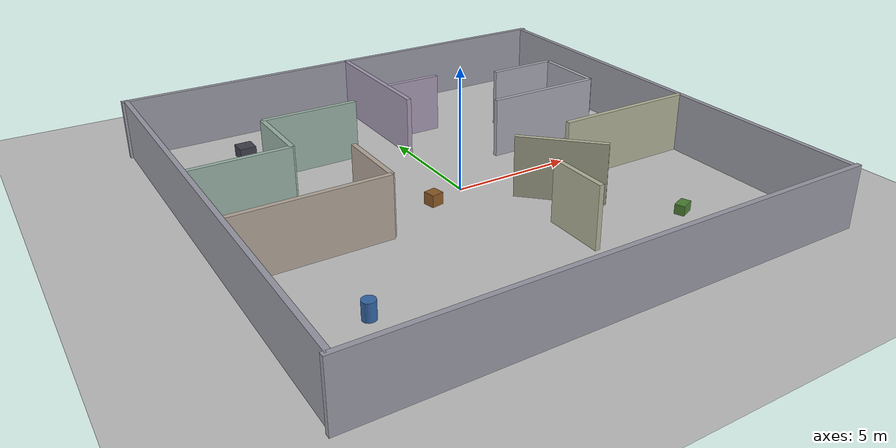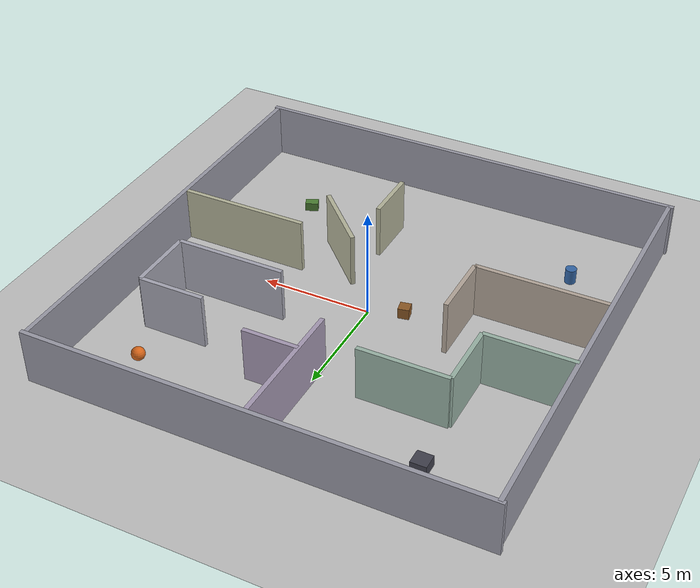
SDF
<?xml version="1.0" ?>
<sdf version="1.9">
  <world name="indoor_world">
    <physics name="1ms" type="ignored">
      <max_step_size>0.001</max_step_size>
      <real_time_factor>1.0</real_time_factor>
      <real_time_update_rate>1000</real_time_update_rate>
    </physics>

    <plugin name="gz::sim::systems::Physics" filename="ignition-gazebo-physics-system"/>
    <plugin name="gz::sim::systems::UserCommands" filename="ignition-gazebo-user-commands-system"/>
    <plugin name="gz::sim::systems::SceneBroadcaster" filename="ignition-gazebo-scene-broadcaster-system"/>
    <plugin name="gz::sim::systems::Contact" filename="ignition-gazebo-contact-system"/>

    <gravity>0 0 -9.8</gravity>
    <magnetic_field>6e-06 2.3e-05 -4.2e-05</magnetic_field>
    <atmosphere type="adiabatic"/>

    <scene>
      <ambient>0.5 0.5 0.5 1</ambient>
      <background>0.8 0.8 0.8 1</background>
      <shadows>true</shadows>
    </scene>

    <light name="sun" type="directional">
      <pose>0 0 15 0 0 0</pose>
      <cast_shadows>true</cast_shadows>
      <intensity>1</intensity>
      <direction>-0.5 0.1 -0.9</direction>
      <diffuse>0.9 0.9 0.9 1</diffuse>
      <specular>0.2 0.2 0.2 1</specular>
      <attenuation>
        <range>1000</range>
        <linear>0.01</linear>
        <constant>0.9</constant>
        <quadratic>0.001</quadratic>
      </attenuation>
    </light>

    <!-- Ground Plane (20x20m room area on 100x100m plane) -->
    <model name="ground_plane">
      <static>true</static>
      <link name="link">
        <collision name="collision">
          <geometry>
            <plane>
              <normal>0 0 1</normal>
              <size>100 100</size>
            </plane>
          </geometry>
          <surface>
            <friction>
              <ode/>
            </friction>
          </surface>
        </collision>
        <visual name="visual">
          <geometry>
            <plane>
              <normal>0 0 1</normal>
              <size>100 100</size>
            </plane>
          </geometry>
          <material>
            <ambient>0.75 0.75 0.75 1</ambient>
            <diffuse>0.75 0.75 0.75 1</diffuse>
            <specular>0.2 0.2 0.2 1</specular>
          </material>
        </visual>
      </link>
    </model>

    <!-- Room Structure: 20x20m with 5 distinct compartments separated by walls with unique bends -->
    <model name="building_structure">
      <static>true</static>

      <!-- Outer Boundary Walls (20x20m) -->
      <link name="wall_outer_north">
        <pose>0 10 1.25 0 0 0</pose>
        <collision name="col"><geometry><box><size>20.4 0.2 2.5</size></box></geometry></collision>
        <visual name="vis">
          <geometry><box><size>20.4 0.2 2.5</size></box></geometry>
          <material>
            <ambient>0.6 0.6 0.65 1</ambient>
            <diffuse>0.6 0.6 0.65 1</diffuse>
          </material>
        </visual>
      </link>

      <link name="wall_outer_south">
        <pose>0 -10 1.25 0 0 0</pose>
        <collision name="col"><geometry><box><size>20.4 0.2 2.5</size></box></geometry></collision>
        <visual name="vis">
          <geometry><box><size>20.4 0.2 2.5</size></box></geometry>
          <material>
            <ambient>0.6 0.6 0.65 1</ambient>
            <diffuse>0.6 0.6 0.65 1</diffuse>
          </material>
        </visual>
      </link>

      <link name="wall_outer_west">
        <pose>-10 0 1.25 0 0 0</pose>
        <collision name="col"><geometry><box><size>0.2 20.0 2.5</size></box></geometry></collision>
        <visual name="vis">
          <geometry><box><size>0.2 20.0 2.5</size></box></geometry>
          <material>
            <ambient>0.6 0.6 0.65 1</ambient>
            <diffuse>0.6 0.6 0.65 1</diffuse>
          </material>
        </visual>
      </link>

      <link name="wall_outer_east">
        <pose>10 0 1.25 0 0 0</pose>
        <collision name="col"><geometry><box><size>0.2 20.0 2.5</size></box></geometry></collision>
        <visual name="vis">
          <geometry><box><size>0.2 20.0 2.5</size></box></geometry>
          <material>
            <ambient>0.6 0.6 0.65 1</ambient>
            <diffuse>0.6 0.6 0.65 1</diffuse>
          </material>
        </visual>
      </link>

      <!-- Partition 1: SW Compartment (L-Shape Bend Wall - 90 Degree Turn) -->
      <link name="wall_sw_l1">
        <pose>-7.0 -2.0 1.25 0 0 0</pose>
        <collision name="col"><geometry><box><size>6.0 0.2 2.5</size></box></geometry></collision>
        <visual name="vis"><geometry><box><size>6.0 0.2 2.5</size></box></geometry>
          <material><ambient>0.7 0.65 0.6 1</ambient><diffuse>0.7 0.65 0.6 1</diffuse></material>
        </visual>
      </link>
      <link name="wall_sw_l2">
        <pose>-4.0 -0.5 1.25 0 0 0</pose>
        <collision name="col"><geometry><box><size>0.2 3.0 2.5</size></box></geometry></collision>
        <visual name="vis"><geometry><box><size>0.2 3.0 2.5</size></box></geometry>
          <material><ambient>0.7 0.65 0.6 1</ambient><diffuse>0.7 0.65 0.6 1</diffuse></material>
        </visual>
      </link>

      <!-- Partition 2: NW Compartment (Z-Shape / Step-Bend Wall) -->
      <link name="wall_nw_z1">
        <pose>-8.0 2.0 1.25 0 0 0</pose>
        <collision name="col"><geometry><box><size>4.0 0.2 2.5</size></box></geometry></collision>
        <visual name="vis"><geometry><box><size>4.0 0.2 2.5</size></box></geometry>
          <material><ambient>0.6 0.7 0.65 1</ambient><diffuse>0.6 0.7 0.65 1</diffuse></material>
        </visual>
      </link>
      <link name="wall_nw_z2">
        <pose>-6.0 3.5 1.25 0 0 0</pose>
        <collision name="col"><geometry><box><size>0.2 3.0 2.5</size></box></geometry></collision>
        <visual name="vis"><geometry><box><size>0.2 3.0 2.5</size></box></geometry>
          <material><ambient>0.6 0.7 0.65 1</ambient><diffuse>0.6 0.7 0.65 1</diffuse></material>
        </visual>
      </link>
      <link name="wall_nw_z3">
        <pose>-4.0 5.0 1.25 0 0 0</pose>
        <collision name="col"><geometry><box><size>4.0 0.2 2.5</size></box></geometry></collision>
        <visual name="vis"><geometry><box><size>4.0 0.2 2.5</size></box></geometry>
          <material><ambient>0.6 0.7 0.65 1</ambient><diffuse>0.6 0.7 0.65 1</diffuse></material>
        </visual>
      </link>

      <!-- Partition 3: Divider between NW & NE (T-Junction Bend Wall) -->
      <link name="wall_ne_t1">
        <pose>0.0 7.0 1.25 0 0 0</pose>
        <collision name="col"><geometry><box><size>0.2 6.0 2.5</size></box></geometry></collision>
        <visual name="vis"><geometry><box><size>0.2 6.0 2.5</size></box></geometry>
          <material><ambient>0.65 0.6 0.7 1</ambient><diffuse>0.65 0.6 0.7 1</diffuse></material>
        </visual>
      </link>
      <link name="wall_ne_t2">
        <pose>1.25 6.0 1.25 0 0 0</pose>
        <collision name="col"><geometry><box><size>2.5 0.2 2.5</size></box></geometry></collision>
        <visual name="vis"><geometry><box><size>2.5 0.2 2.5</size></box></geometry>
          <material><ambient>0.65 0.6 0.7 1</ambient><diffuse>0.65 0.6 0.7 1</diffuse></material>
        </visual>
      </link>

      <!-- Partition 4: NE Compartment Inner Partition (U-Hook Bend Wall) -->
      <link name="wall_ne_u1">
        <pose>5.5 2.0 1.25 0 0 0</pose>
        <collision name="col"><geometry><box><size>5.0 0.2 2.5</size></box></geometry></collision>
        <visual name="vis"><geometry><box><size>5.0 0.2 2.5</size></box></geometry>
          <material><ambient>0.65 0.65 0.7 1</ambient><diffuse>0.65 0.65 0.7 1</diffuse></material>
        </visual>
      </link>
      <link name="wall_ne_u2">
        <pose>8.0 3.5 1.25 0 0 0</pose>
        <collision name="col"><geometry><box><size>0.2 3.0 2.5</size></box></geometry></collision>
        <visual name="vis"><geometry><box><size>0.2 3.0 2.5</size></box></geometry>
          <material><ambient>0.65 0.65 0.7 1</ambient><diffuse>0.65 0.65 0.7 1</diffuse></material>
        </visual>
      </link>
      <link name="wall_ne_u3">
        <pose>6.5 5.0 1.25 0 0 0</pose>
        <collision name="col"><geometry><box><size>3.0 0.2 2.5</size></box></geometry></collision>
        <visual name="vis"><geometry><box><size>3.0 0.2 2.5</size></box></geometry>
          <material><ambient>0.65 0.65 0.7 1</ambient><diffuse>0.65 0.65 0.7 1</diffuse></material>
        </visual>
      </link>

      <!-- Partition 5: SE Compartment (45-degree Diagonal / Angled Wall Bend) -->
      <link name="wall_se_a1">
        <pose>7.0 -1.5 1.25 0 0 0</pose>
        <collision name="col"><geometry><box><size>6.0 0.2 2.5</size></box></geometry></collision>
        <visual name="vis"><geometry><box><size>6.0 0.2 2.5</size></box></geometry>
          <material><ambient>0.7 0.7 0.6 1</ambient><diffuse>0.7 0.7 0.6 1</diffuse></material>
        </visual>
      </link>
      <link name="wall_se_a2">
        <pose>2.75 -2.75 1.25 0 0 -0.785398</pose>
        <collision name="col"><geometry><box><size>3.535 0.2 2.5</size></box></geometry></collision>
        <visual name="vis"><geometry><box><size>3.535 0.2 2.5</size></box></geometry>
          <material><ambient>0.7 0.7 0.6 1</ambient><diffuse>0.7 0.7 0.6 1</diffuse></material>
        </visual>
      </link>
      <link name="wall_se_a3">
        <pose>1.5 -5.25 1.25 0 0 0</pose>
        <collision name="col"><geometry><box><size>0.2 2.5 2.5</size></box></geometry></collision>
        <visual name="vis"><geometry><box><size>0.2 2.5 2.5</size></box></geometry>
          <material><ambient>0.7 0.7 0.6 1</ambient><diffuse>0.7 0.7 0.6 1</diffuse></material>
        </visual>
      </link>
    </model>

    <!-- 5 Small Items / Props placed across the compartments -->

    <!-- Item 1: Small Wooden Crate (Central Atrium) -->
    <model name="prop_crate_center">
      <static>true</static>
      <pose>-1.5 -0.5 0.25 0 0 0.2</pose>
      <link name="link">
        <collision name="col">
          <geometry><box><size>0.5 0.5 0.5</size></box></geometry>
        </collision>
        <visual name="vis">
          <geometry><box><size>0.5 0.5 0.5</size></box></geometry>
          <material>
            <ambient>0.55 0.35 0.15 1</ambient>
            <diffuse>0.55 0.35 0.15 1</diffuse>
          </material>
        </visual>
      </link>
    </model>

    <!-- Item 2: Small Metal Barrel (SW Compartment) -->
    <model name="prop_barrel_sw">
      <static>true</static>
      <pose>-7.0 -6.0 0.35 0 0 0</pose>
      <link name="link">
        <collision name="col">
          <geometry><cylinder><radius>0.25</radius><length>0.7</length></cylinder></geometry>
        </collision>
        <visual name="vis">
          <geometry><cylinder><radius>0.25</radius><length>0.7</length></cylinder></geometry>
          <material>
            <ambient>0.2 0.4 0.65 1</ambient>
            <diffuse>0.2 0.4 0.65 1</diffuse>
          </material>
        </visual>
      </link>
    </model>

    <!-- Item 3: Workshop Workbench Table (NW Compartment) -->
    <model name="prop_table_nw">
      <static>true</static>
      <pose>-6.0 7.5 0.25 0 0 0</pose>
      <link name="link">
        <collision name="col">
          <geometry><box><size>0.7 0.7 0.5</size></box></geometry>
        </collision>
        <visual name="vis">
          <geometry><box><size>0.7 0.7 0.5</size></box></geometry>
          <material>
            <ambient>0.25 0.25 0.3 1</ambient>
            <diffuse>0.25 0.25 0.3 1</diffuse>
          </material>
        </visual>
      </link>
    </model>

    <!-- Item 4: Small Spherical Container (NE Compartment) -->
    <model name="prop_sphere_ne">
      <static>true</static>
      <pose>7.0 7.0 0.3 0 0 0</pose>
      <link name="link">
        <collision name="col">
          <geometry><sphere><radius>0.3</radius></sphere></geometry>
        </collision>
        <visual name="vis">
          <geometry><sphere><radius>0.3</radius></sphere></geometry>
          <material>
            <ambient>0.85 0.4 0.1 1</ambient>
            <diffuse>0.85 0.4 0.1 1</diffuse>
          </material>
        </visual>
      </link>
    </model>

    <!-- Item 5: Small Equipment Box (SE Compartment) -->
    <model name="prop_box_se">
      <static>true</static>
      <pose>6.0 -6.0 0.2 0 0 0.4</pose>
      <link name="link">
        <collision name="col">
          <geometry><box><size>0.6 0.4 0.4</size></box></geometry>
        </collision>
        <visual name="vis">
          <geometry><box><size>0.6 0.4 0.4</size></box></geometry>
          <material>
            <ambient>0.3 0.5 0.2 1</ambient>
            <diffuse>0.3 0.5 0.2 1</diffuse>
          </material>
        </visual>
      </link>
    </model>

  </world>
</sdf>
